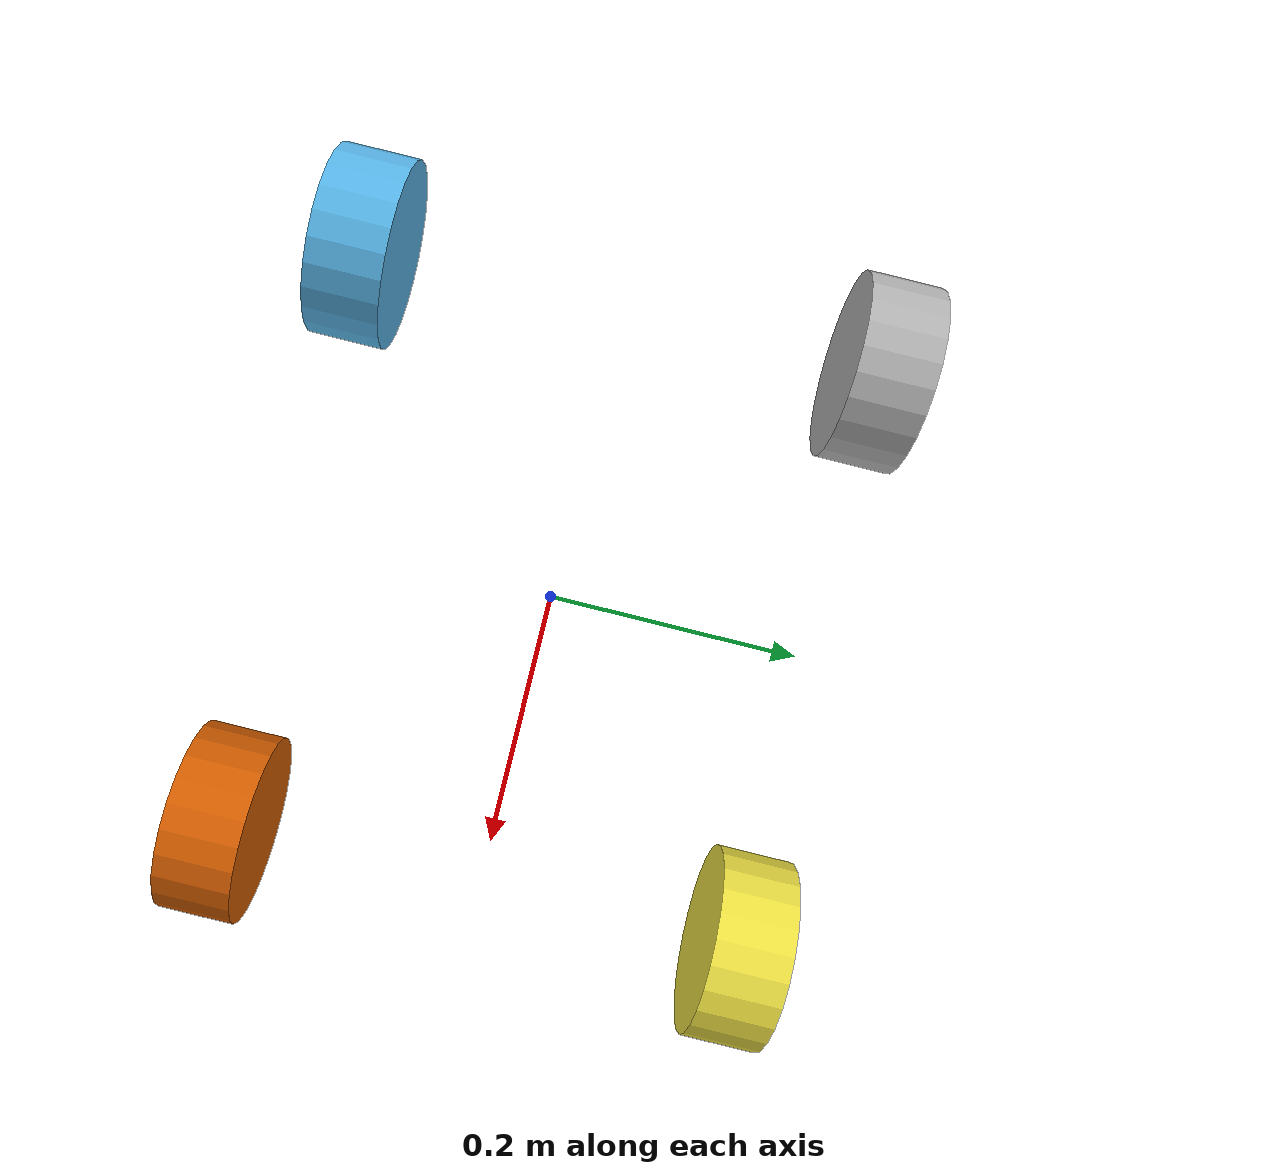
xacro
<?xml version="1.0"?>
<robot name="four_wheel_steering_robot" xmlns:xacro="http://ros.org/wiki/xacro">

<!-- ==================================================
【1】全局变量定义（所有可修改参数都在这里）
================================================== -->
<xacro:property name="wheel_radius"     value="0.075"/>
<xacro:property name="wheel_length"     value="0.06"/>
<xacro:property name="steer_effort"     value="10"/>
<xacro:property name="steer_velocity"   value="10"/>
<xacro:property name="drive_effort"     value="10"/>
<xacro:property name="drive_velocity"   value="40"/>
<xacro:property name="wheel_spacing_length"  value="0.235"/>
<xacro:property name="wheel_spacing_width"   value="0.209"/>

<!-- ==================================================
【2】轮子宏定义：转向 + 驱动一体化模块
================================================== -->
<xacro:macro name="steer_drive_wheel" params="prefix x y">

  <link name="steer_${prefix}_solid"/>

  <joint name="steer_${prefix}" type="continuous">
    <parent link="base_link"/>
    <child link="steer_${prefix}_solid"/>
    <axis xyz="0 0 1"/>
    <limit effort="${steer_effort}" velocity="${steer_velocity}"/>
    <origin xyz="${x} ${y} 0" rpy="0 0 0"/>
  </joint>

  <joint name="drive_${prefix}" type="continuous">
    <parent link="steer_${prefix}_solid"/>
    <child link="drive_${prefix}_solid"/>
    <axis xyz="0 0 1"/>
    <limit effort="${drive_effort}" velocity="${drive_velocity}"/>
    <origin xyz="0 0 0" rpy="1.570792 0.0 3.141591"/>
  </joint>

  <link name="drive_${prefix}_solid">
    <visual>
      <geometry>
        <cylinder radius="${wheel_radius}" length="${wheel_length}"/>
      </geometry>
    </visual>
    <collision>
      <geometry>
        <cylinder radius="${wheel_radius}" length="${wheel_length}"/>
      </geometry>
    </collision>
  </link>

</xacro:macro>

<!-- ==================================================
【3】基础车体
================================================== -->
<link name="base_footprint"/>

<joint name="base_footprint_joint" type="fixed">
  <parent link="base_footprint"/>
  <child link="base_link"/>
  <origin xyz="0 0 0" rpy="0 0 0"/>
</joint>

<link name="base_link"/>

<!-- ==================================================
【4】四个轮子（调用宏）
================================================== -->
<xacro:steer_drive_wheel prefix="fl" x="${wheel_spacing_length}"  y="${wheel_spacing_width}"/>
<xacro:steer_drive_wheel prefix="fr" x="${wheel_spacing_length}"  y="-${wheel_spacing_width}"/>
<xacro:steer_drive_wheel prefix="rl" x="-${wheel_spacing_length}" y="${wheel_spacing_width}"/>
<xacro:steer_drive_wheel prefix="rr" x="-${wheel_spacing_length}" y="-${wheel_spacing_width}"/>

<!-- ==================================================
【5】IMU / 陀螺仪 / 加速度计
================================================== -->
<link name="accelerometer"/>

<joint name="base_link_accelerometer_joint" type="fixed">
  <parent link="base_link"/>
  <child link="accelerometer"/>
  <origin xyz="0 0 0" rpy="0 0 0"/>
</joint>

<link name="gyro"/>

<joint name="base_link_gyro_joint" type="fixed">
  <parent link="base_link"/>
  <child link="gyro"/>
  <origin xyz="0 0 0" rpy="0 0 0"/>
</joint>

<link name="imu"/>

<joint name="base_link_imu_joint" type="fixed">
  <parent link="base_link"/>
  <child link="imu"/>
  <origin xyz="0 0 0" rpy="0 0 0"/>
</joint>

<!-- ==================================================
【6】GPS / Pen
================================================== -->
<link name="gps"/>

<joint name="base_link_gps_joint" type="fixed">
  <parent link="base_link"/>
  <child link="gps"/>
  <origin xyz="0 0 0" rpy="0 0 0"/>
</joint>

<link name="pen"/>

<joint name="base_link_pen_joint" type="fixed">
  <parent link="base_link"/>
  <child link="pen"/>
  <origin xyz="0 0 0" rpy="0 0 0"/>
</joint>

<!-- ==================================================
【7】雷达
================================================== -->
<link name="lidar"/>

<joint name="base_link_lidar_joint" type="fixed">
  <parent link="base_link"/>
  <child link="lidar"/>
  <origin xyz="0 0 0.05" rpy="0 0 0"/>
</joint>

<!-- ==================================================
【8】TOF 相机
================================================== -->
<link name="tof"/>

<joint name="base_link_tof_joint" type="fixed">
  <parent link="base_link"/>
  <child link="tof"/>
  <origin xyz="0.218435 0 0.031895" rpy="0 -0.261795 0"/>
</joint>

<link name="tof_optical"/>

<joint name="tof_to_optical_joint" type="fixed">
  <parent link="tof"/>
  <child link="tof_optical"/>
  <origin xyz="0 0 0" rpy="1.570796 3.141592 1.570796"/>
</joint>

</robot>
